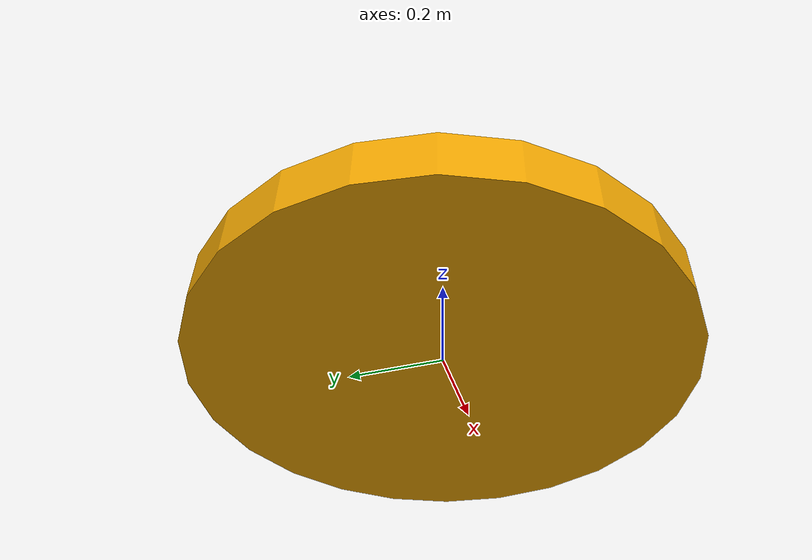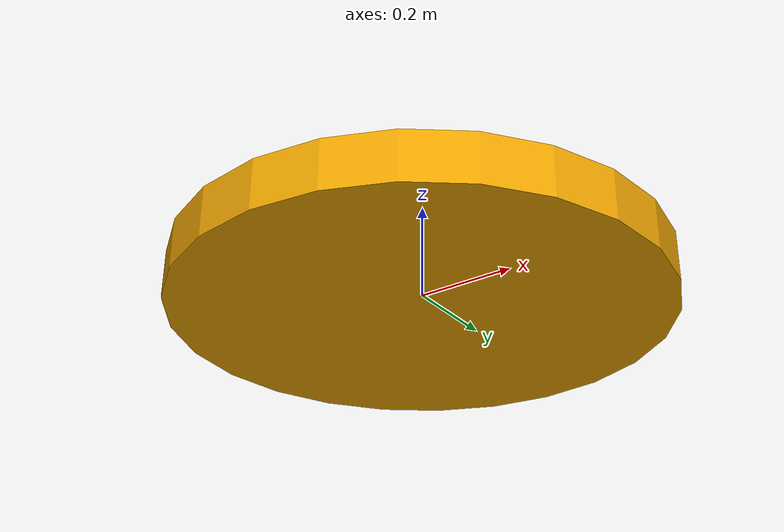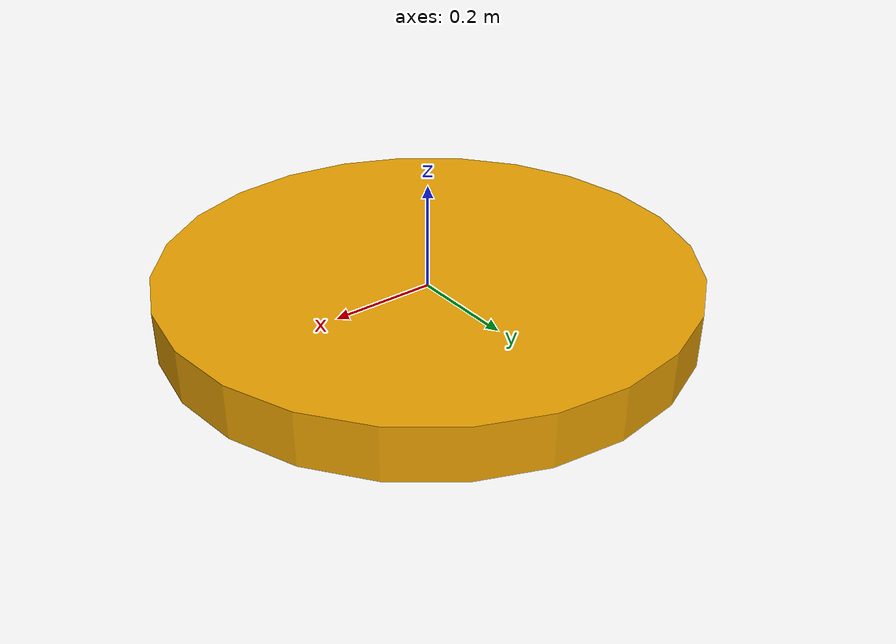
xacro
<?xml version="1.0"?>
<robot xmlns:xacro="http://www.ros.org/wiki/xacro" name="segment">

<xacro:property name="disk_length" value="0.1" />
<xacro:property name="disk_radius" value="0.5" />
<!-- SEGMNET 1 (10 DISKS)-->
  <link name="base_link">
    <visual>
      <geometry>
        <cylinder length="${disk_length}" radius="${disk_radius}"/>
      </geometry>
    </visual>
  </link>

 <link name="seg1">
    <visual>
      <geometry>
   <cylinder length="${disk_length}" radius="${disk_radius}"/>
      </geometry>
      <origin rpy="0 0 0" xyz="0 0 0"/>
    </visual>
  </link>

   <link name="seg2">
    <visual>
      <geometry>
   <cylinder length="${disk_length}" radius="${disk_radius}"/>
      </geometry>
      <origin rpy="0 0 0" xyz="0 0 0"/>
    </visual>
  </link>

 <joint name="segment1" type="floating">
		<parent link="base_link"/>
		<child link="seg1"/>
</joint>

<joint name="segment2" type="floating">
		<parent link="base_link"/>
		<child link="seg2"/>
</joint>

 </robot>
